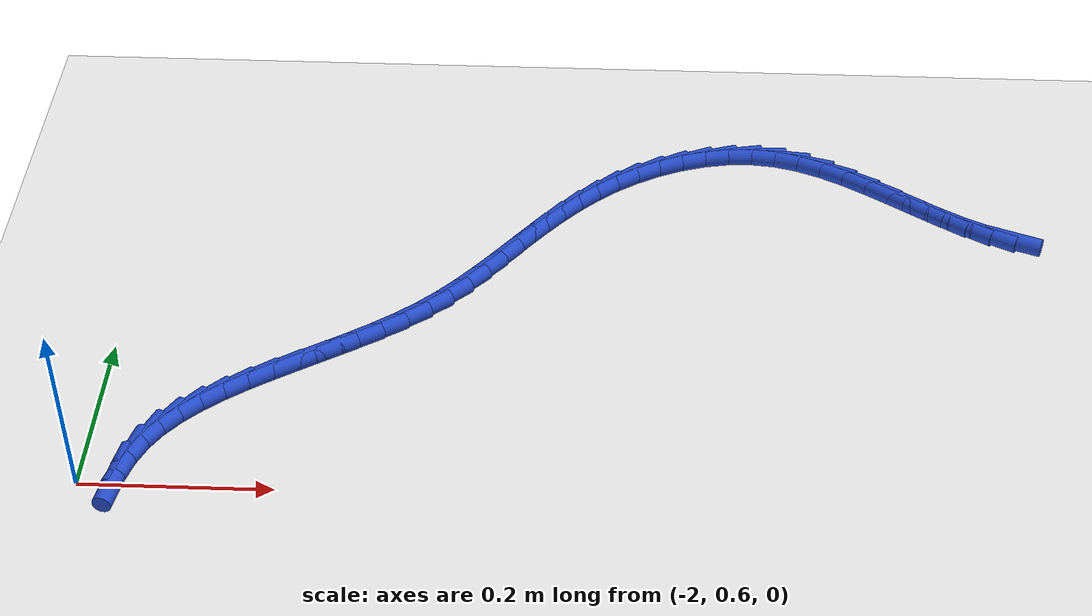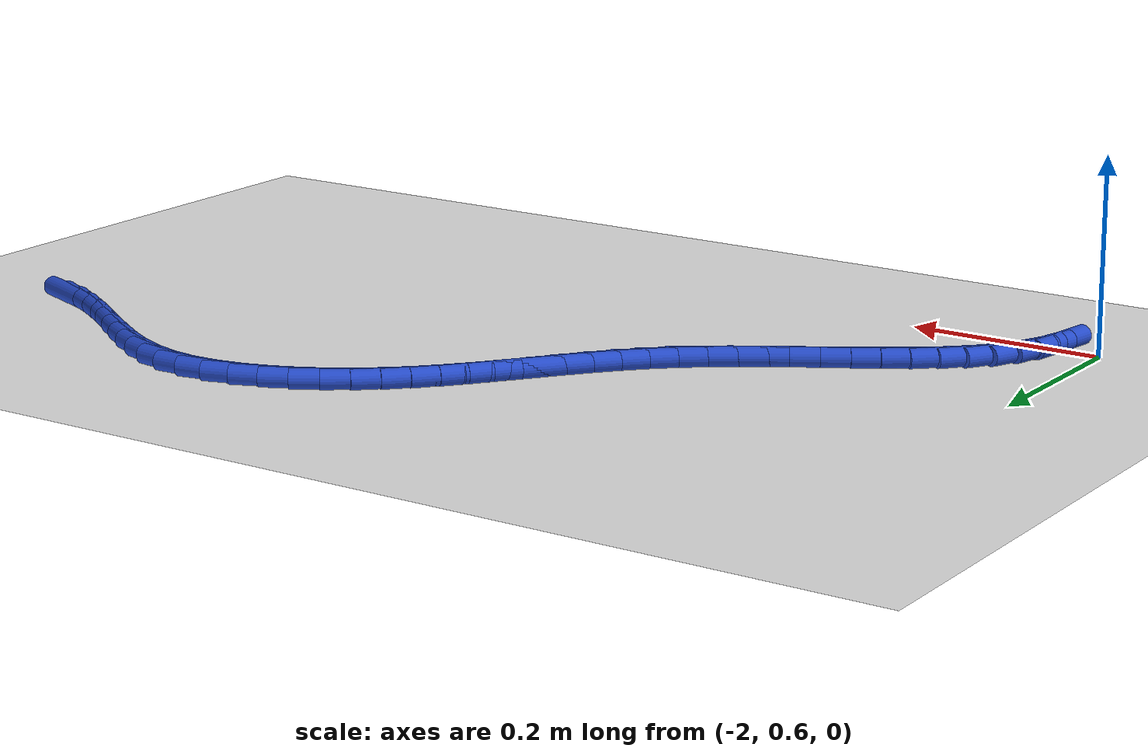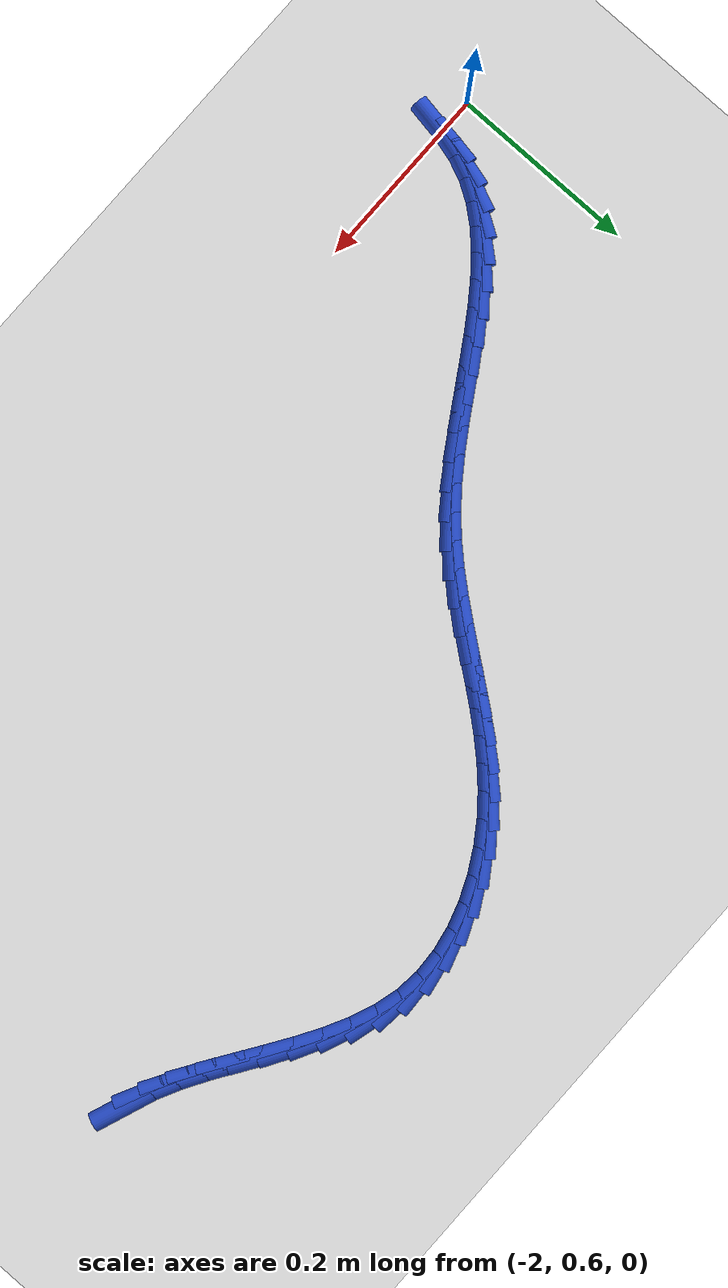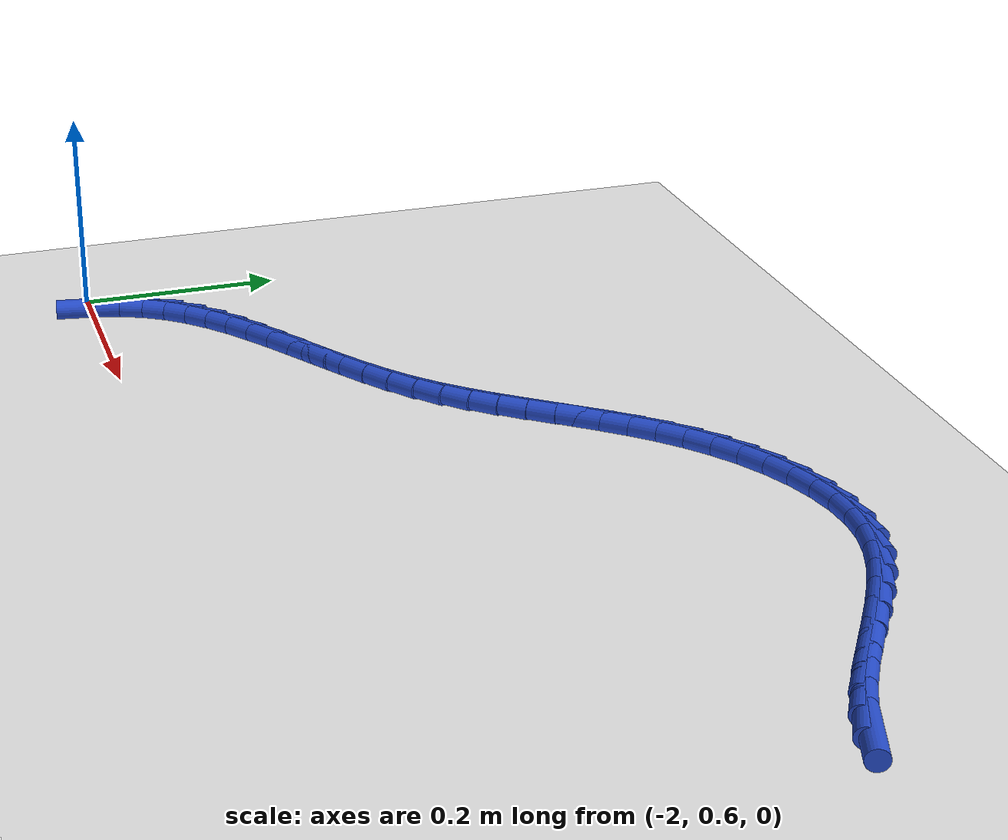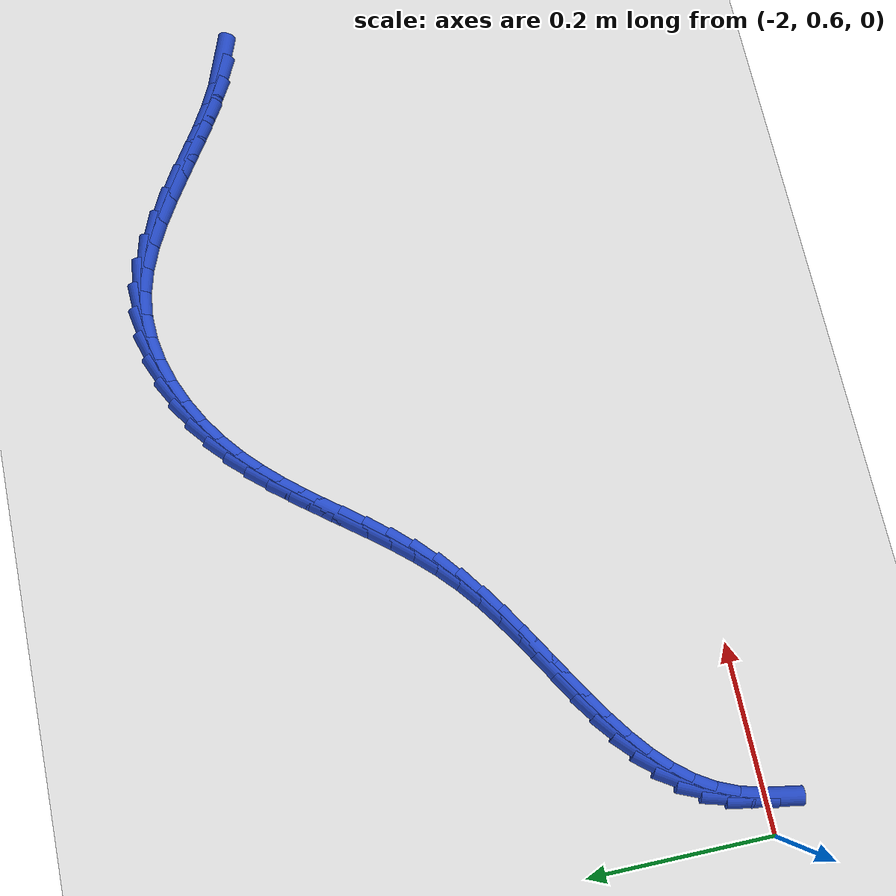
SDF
<sdf version="1.6">
 <world name="default">
  <model name="ground_plane">
   <static>1</static>
   <link name="link">
    <collision name="collision">
     <geometry><plane><normal>0 0 1</normal><size>100 100</size></plane></geometry>
     <surface><friction><ode><mu>100</mu><mu2>50</mu2></ode></friction></surface>
    </collision>
    <visual name="visual">
     <cast_shadows>0</cast_shadows>
     <geometry><plane><normal>0 0 1</normal><size>100 100</size></plane></geometry>
     <material>
      <script><uri>file://media/materials/scripts/gazebo.material</uri><name>Gazebo/WhiteGlow</name></script>
     </material>
    </visual>
   </link>
  </model>
  <model name="line">
   <link name="link_61">
    <pose>-1.0348695097243301 1.0064445026493538 0.01 0 1.57 -0.3600196760487793</pose>
    <collision name="collision">
     <geometry><cylinder><radius>0.01</radius><length>0.08</length></cylinder></geometry>
    </collision>
    <visual name="visual">
     <material>
      <script><name>Gazebo/Blue</name><uri>file://media/materials/scripts/gazebo.material</uri></script>
     </material>
     <geometry><cylinder><radius>0.01</radius><length>0.08</length></cylinder></geometry>
    </visual>
   </link>
   <link name="link_62">
    <pose>-1.0595836702912398 1.0157475383391132 0.01 0 1.57 -0.46654118120550203</pose>
    <collision name="collision">
     <geometry><cylinder><radius>0.01</radius><length>0.08</length></cylinder></geometry>
    </collision>
    <visual name="visual">
     <material>
      <script><name>Gazebo/Blue</name><uri>file://media/materials/scripts/gazebo.material</uri></script>
     </material>
     <geometry><cylinder><radius>0.01</radius><length>0.08</length></cylinder></geometry>
    </visual>
   </link>
   <link name="link_63">
    <pose>-1.084318189761183 1.0282043918446997 0.01 0 1.57 -0.5366930967888984</pose>
    <collision name="collision">
     <geometry><cylinder><radius>0.01</radius><length>0.08</length></cylinder></geometry>
    </collision>
    <visual name="visual">
     <material>
      <script><name>Gazebo/Blue</name><uri>file://media/materials/scripts/gazebo.material</uri></script>
     </material>
     <geometry><cylinder><radius>0.01</radius><length>0.08</length></cylinder></geometry>
    </visual>
   </link>
   <link name="link_64">
    <pose>-1.1091350107379692 1.0429689950405736 0.01 0 1.57 -0.5764200681480977</pose>
    <collision name="collision">
     <geometry><cylinder><radius>0.01</radius><length>0.08</length></cylinder></geometry>
    </collision>
    <visual name="visual">
     <material>
      <script><name>Gazebo/Blue</name><uri>file://media/materials/scripts/gazebo.material</uri></script>
     </material>
     <geometry><cylinder><radius>0.01</radius><length>0.08</length></cylinder></geometry>
    </visual>
   </link>
   <link name="link_65">
    <pose>-1.1340960758254066 1.0591952798011952 0.01 0 1.57 -0.5897536667342413</pose>
    <collision name="collision">
     <geometry><cylinder><radius>0.01</radius><length>0.08</length></cylinder></geometry>
    </collision>
    <visual name="visual">
     <material>
      <script><name>Gazebo/Blue</name><uri>file://media/materials/scripts/gazebo.material</uri></script>
     </material>
     <geometry><cylinder><radius>0.01</radius><length>0.08</length></cylinder></geometry>
    </visual>
   </link>
   <link name="link_66">
    <pose>-1.1592633276273043 1.0760371780010252 0.01 0 1.57 -0.5785402649932369</pose>
    <collision name="collision">
     <geometry><cylinder><radius>0.01</radius><length>0.08</length></cylinder></geometry>
    </collision>
    <visual name="visual">
     <material>
      <script><name>Gazebo/Blue</name><uri>file://media/materials/scripts/gazebo.material</uri></script>
     </material>
     <geometry><cylinder><radius>0.01</radius><length>0.08</length></cylinder></geometry>
    </visual>
   </link>
   <link name="link_67">
    <pose>-1.1846987087474719 1.0926486215145246 0.01 0 1.57 -0.54257557063632</pose>
    <collision name="collision">
     <geometry><cylinder><radius>0.01</radius><length>0.08</length></cylinder></geometry>
    </collision>
    <visual name="visual">
     <material>
      <script><name>Gazebo/Blue</name><uri>file://media/materials/scripts/gazebo.material</uri></script>
     </material>
     <geometry><cylinder><radius>0.01</radius><length>0.08</length></cylinder></geometry>
    </visual>
   </link>
   <link name="link_68">
    <pose>-1.210464161789718 1.1081835422161532 0.01 0 1.57 -0.47983360979448114</pose>
    <collision name="collision">
     <geometry><cylinder><radius>0.01</radius><length>0.08</length></cylinder></geometry>
    </collision>
    <visual name="visual">
     <material>
      <script><name>Gazebo/Blue</name><uri>file://media/materials/scripts/gazebo.material</uri></script>
     </material>
     <geometry><cylinder><radius>0.01</radius><length>0.08</length></cylinder></geometry>
    </visual>
   </link>
   <link name="link_69">
    <pose>-1.236621629357852 1.1217958719803722 0.01 0 1.57 -0.38693950141402556</pose>
    <collision name="collision">
     <geometry><cylinder><radius>0.01</radius><length>0.08</length></cylinder></geometry>
    </collision>
    <visual name="visual">
     <material>
      <script><name>Gazebo/Blue</name><uri>file://media/materials/scripts/gazebo.material</uri></script>
     </material>
     <geometry><cylinder><radius>0.01</radius><length>0.08</length></cylinder></geometry>
    </visual>
   </link>
   <link name="link_70">
    <pose>-1.2632330540556822 1.132639542681642 0.01 0 1.57 -0.2604299718025255</pose>
    <collision name="collision">
     <geometry><cylinder><radius>0.01</radius><length>0.08</length></cylinder></geometry>
    </collision>
    <visual name="visual">
     <material>
      <script><name>Gazebo/Blue</name><uri>file://media/materials/scripts/gazebo.material</uri></script>
     </material>
     <geometry><cylinder><radius>0.01</radius><length>0.08</length></cylinder></geometry>
    </visual>
   </link>
   <link name="link_71">
    <pose>-1.2903603784870183 1.1398684861944228 0.01 0 1.57 -0.1039151474428411</pose>
    <collision name="collision">
     <geometry><cylinder><radius>0.01</radius><length>0.08</length></cylinder></geometry>
    </collision>
    <visual name="visual">
     <material>
      <script><name>Gazebo/Blue</name><uri>file://media/materials/scripts/gazebo.material</uri></script>
     </material>
     <geometry><cylinder><radius>0.01</radius><length>0.08</length></cylinder></geometry>
    </visual>
   </link>
   <link name="link_72">
    <pose>-1.3180251527663653 1.142753667851129 0.01 0 1.57 0.04909680339785257</pose>
    <collision name="collision">
     <geometry><cylinder><radius>0.01</radius><length>0.08</length></cylinder></geometry>
    </collision>
    <visual name="visual">
     <material>
      <script><name>Gazebo/Blue</name><uri>file://media/materials/scripts/gazebo.material</uri></script>
     </material>
     <geometry><cylinder><radius>0.01</radius><length>0.08</length></cylinder></geometry>
    </visual>
   </link>
   <link name="link_73">
    <pose>-1.3459677727446917 1.1413806711532437 0.01 0 1.57 0.18462029657132842</pose>
    <collision name="collision">
     <geometry><cylinder><radius>0.01</radius><length>0.08</length></cylinder></geometry>
    </collision>
    <visual name="visual">
     <material>
      <script><name>Gazebo/Blue</name><uri>file://media/materials/scripts/gazebo.material</uri></script>
     </material>
     <geometry><cylinder><radius>0.01</radius><length>0.08</length></cylinder></geometry>
    </visual>
   </link>
   <link name="link_74">
    <pose>-1.373809110504782 1.1361813885359002 0.01 0 1.57 0.3042912069913193</pose>
    <collision name="collision">
     <geometry><cylinder><radius>0.01</radius><length>0.08</length></cylinder></geometry>
    </collision>
    <visual name="visual">
     <material>
      <script><name>Gazebo/Blue</name><uri>file://media/materials/scripts/gazebo.material</uri></script>
     </material>
     <geometry><cylinder><radius>0.01</radius><length>0.08</length></cylinder></geometry>
    </visual>
   </link>
   <link name="link_75">
    <pose>-1.4011696002491214 1.1275889811514253 0.01 0 1.57 0.4110980284607119</pose>
    <collision name="collision">
     <geometry><cylinder><radius>0.01</radius><length>0.08</length></cylinder></geometry>
    </collision>
    <visual name="visual">
     <material>
      <script><name>Gazebo/Blue</name><uri>file://media/materials/scripts/gazebo.material</uri></script>
     </material>
     <geometry><cylinder><radius>0.01</radius><length>0.08</length></cylinder></geometry>
    </visual>
   </link>
   <link name="link_76">
    <pose>-1.4276696761801946 1.1160366101521455 0.01 0 1.57 0.5084825435246133</pose>
    <collision name="collision">
     <geometry><cylinder><radius>0.01</radius><length>0.08</length></cylinder></geometry>
    </collision>
    <visual name="visual">
     <material>
      <script><name>Gazebo/Blue</name><uri>file://media/materials/scripts/gazebo.material</uri></script>
     </material>
     <geometry><cylinder><radius>0.01</radius><length>0.08</length></cylinder></geometry>
    </visual>
   </link>
   <link name="link_77">
    <pose>-1.4529297725004873 1.1019574366903875 0.01 0 1.57 0.5999839712732107</pose>
    <collision name="collision">
     <geometry><cylinder><radius>0.01</radius><length>0.08</length></cylinder></geometry>
    </collision>
    <visual name="visual">
     <material>
      <script><name>Gazebo/Blue</name><uri>file://media/materials/scripts/gazebo.material</uri></script>
     </material>
     <geometry><cylinder><radius>0.01</radius><length>0.08</length></cylinder></geometry>
    </visual>
   </link>
   <link name="link_78">
    <pose>-1.4765703234124838 1.085784621918478 0.01 0 1.57 0.687642220592534</pose>
    <collision name="collision">
     <geometry><cylinder><radius>0.01</radius><length>0.08</length></cylinder></geometry>
    </collision>
    <visual name="visual">
     <material>
      <script><name>Gazebo/Blue</name><uri>file://media/materials/scripts/gazebo.material</uri></script>
     </material>
     <geometry><cylinder><radius>0.01</radius><length>0.08</length></cylinder></geometry>
    </visual>
   </link>
   <link name="link_79">
    <pose>-1.4983072098923145 1.0679303792836627 0.01 0 1.57 0.7649116421586327</pose>
    <collision name="collision">
     <geometry><cylinder><radius>0.01</radius><length>0.08</length></cylinder></geometry>
    </collision>
    <visual name="visual">
     <material>
      <script><name>Gazebo/Blue</name><uri>file://media/materials/scripts/gazebo.material</uri></script>
     </material>
     <geometry><cylinder><radius>0.01</radius><length>0.08</length></cylinder></geometry>
    </visual>
   </link>
   <link name="link_80">
    <pose>-1.5183416998805865 1.0487003943476085 0.01 0 1.57 0.8275694675574401</pose>
    <collision name="collision">
     <geometry><cylinder><radius>0.01</radius><length>0.08</length></cylinder></geometry>
    </collision>
    <visual name="visual">
     <material>
      <script><name>Gazebo/Blue</name><uri>file://media/materials/scripts/gazebo.material</uri></script>
     </material>
     <geometry><cylinder><radius>0.01</radius><length>0.08</length></cylinder></geometry>
    </visual>
   </link>
   <link name="link_81">
    <pose>-1.5370289741319392 1.0283665734239935 0.01 0 1.57 0.8744662514059732</pose>
    <collision name="collision">
     <geometry><cylinder><radius>0.01</radius><length>0.08</length></cylinder></geometry>
    </collision>
    <visual name="visual">
     <material>
      <script><name>Gazebo/Blue</name><uri>file://media/materials/scripts/gazebo.material</uri></script>
     </material>
     <geometry><cylinder><radius>0.01</radius><length>0.08</length></cylinder></geometry>
    </visual>
   </link>
   <link name="link_82">
    <pose>-1.5547242754843926 1.0072008092010576 0.01 0 1.57 0.9051604834549464</pose>
    <collision name="collision">
     <geometry><cylinder><radius>0.01</radius><length>0.08</length></cylinder></geometry>
    </collision>
    <visual name="visual">
     <material>
      <script><name>Gazebo/Blue</name><uri>file://media/materials/scripts/gazebo.material</uri></script>
     </material>
     <geometry><cylinder><radius>0.01</radius><length>0.08</length></cylinder></geometry>
    </visual>
   </link>
   <link name="link_83">
    <pose>-1.5717828467759662 0.985474994367039 0.01 0 1.57 0.9195893222731479</pose>
    <collision name="collision">
     <geometry><cylinder><radius>0.01</radius><length>0.08</length></cylinder></geometry>
    </collision>
    <visual name="visual">
     <material>
      <script><name>Gazebo/Blue</name><uri>file://media/materials/scripts/gazebo.material</uri></script>
     </material>
     <geometry><cylinder><radius>0.01</radius><length>0.08</length></cylinder></geometry>
    </visual>
   </link>
   <link name="link_84">
    <pose>-1.5885599308446785 0.9634610216101771 0.01 0 1.57 0.917829776996404</pose>
    <collision name="collision">
     <geometry><cylinder><radius>0.01</radius><length>0.08</length></cylinder></geometry>
    </collision>
    <visual name="visual">
     <material>
      <script><name>Gazebo/Blue</name><uri>file://media/materials/scripts/gazebo.material</uri></script>
     </material>
     <geometry><cylinder><radius>0.01</radius><length>0.08</length></cylinder></geometry>
    </visual>
   </link>
   <link name="link_85">
    <pose>-1.60541077052855 0.9414307836187106 0.01 0 1.57 0.8999839110041665</pose>
    <collision name="collision">
     <geometry><cylinder><radius>0.01</radius><length>0.08</length></cylinder></geometry>
    </collision>
    <visual name="visual">
     <material>
      <script><name>Gazebo/Blue</name><uri>file://media/materials/scripts/gazebo.material</uri></script>
     </material>
     <geometry><cylinder><radius>0.01</radius><length>0.08</length></cylinder></geometry>
    </visual>
   </link>
   <link name="link_86">
    <pose>-1.6226906086656 0.9196561730808787 0.01 0 1.57 0.8661915407173961</pose>
    <collision name="collision">
     <geometry><cylinder><radius>0.01</radius><length>0.08</length></cylinder></geometry>
    </collision>
    <visual name="visual">
     <material>
      <script><name>Gazebo/Blue</name><uri>file://media/materials/scripts/gazebo.material</uri></script>
     </material>
     <geometry><cylinder><radius>0.01</radius><length>0.08</length></cylinder></geometry>
    </visual>
   </link>
   <link name="link_87">
    <pose>-1.6407546880938475 0.89840908268492 0.01 0 1.57 0.8167642933289972</pose>
    <collision name="collision">
     <geometry><cylinder><radius>0.01</radius><length>0.08</length></cylinder></geometry>
    </collision>
    <visual name="visual">
     <material>
      <script><name>Gazebo/Blue</name><uri>file://media/materials/scripts/gazebo.material</uri></script>
     </material>
     <geometry><cylinder><radius>0.01</radius><length>0.08</length></cylinder></geometry>
    </visual>
   </link>
   <link name="link_88">
    <pose>-1.6599582516513118 0.8779614051190738 0.01 0 1.57 0.752424784504581</pose>
    <collision name="collision">
     <geometry><cylinder><radius>0.01</radius><length>0.08</length></cylinder></geometry>
    </collision>
    <visual name="visual">
     <material>
      <script><name>Gazebo/Blue</name><uri>file://media/materials/scripts/gazebo.material</uri></script>
     </material>
     <geometry><cylinder><radius>0.01</radius><length>0.08</length></cylinder></geometry>
    </visual>
   </link>
   <link name="link_89">
    <pose>-1.6806565167701106 0.8585850158647248 0.01 0 1.57 0.6808663428796471</pose>
    <collision name="collision">
     <geometry><cylinder><radius>0.01</radius><length>0.08</length></cylinder></geometry>
    </collision>
    <visual name="visual">
     <material>
      <script><name>Gazebo/Blue</name><uri>file://media/materials/scripts/gazebo.material</uri></script>
     </material>
     <geometry><cylinder><radius>0.01</radius><length>0.08</length></cylinder></geometry>
    </visual>
   </link>
   <link name="link_90">
    <pose>-1.7030480814947517 0.8404457155670403 0.01 0 1.57 0.6237194241804441</pose>
    <collision name="collision">
     <geometry><cylinder><radius>0.01</radius><length>0.08</length></cylinder></geometry>
    </collision>
    <visual name="visual">
     <material>
      <script><name>Gazebo/Blue</name><uri>file://media/materials/scripts/gazebo.material</uri></script>
     </material>
     <geometry><cylinder><radius>0.01</radius><length>0.08</length></cylinder></geometry>
    </visual>
   </link>
   <link name="link_91">
    <pose>-1.7268042813016864 0.8233522016325399 0.01 0 1.57 0.5840618224408133</pose>
    <collision name="collision">
     <geometry><cylinder><radius>0.01</radius><length>0.08</length></cylinder></geometry>
    </collision>
    <visual name="visual">
     <material>
      <script><name>Gazebo/Blue</name><uri>file://media/materials/scripts/gazebo.material</uri></script>
     </material>
     <geometry><cylinder><radius>0.01</radius><length>0.08</length></cylinder></geometry>
    </visual>
   </link>
   <link name="link_92">
    <pose>-1.7514856146757365 0.8070381040325216 0.01 0 1.57 0.5606453323897965</pose>
    <collision name="collision">
     <geometry><cylinder><radius>0.01</radius><length>0.08</length></cylinder></geometry>
    </collision>
    <visual name="visual">
     <material>
      <script><name>Gazebo/Blue</name><uri>file://media/materials/scripts/gazebo.material</uri></script>
     </material>
     <geometry><cylinder><radius>0.01</radius><length>0.08</length></cylinder></geometry>
    </visual>
   </link>
   <link name="link_93">
    <pose>-1.7766525801017259 0.7912370527382825 0.01 0 1.57 0.5527653352220513</pose>
    <collision name="collision">
     <geometry><cylinder><radius>0.01</radius><length>0.08</length></cylinder></geometry>
    </collision>
    <visual name="visual">
     <material>
      <script><name>Gazebo/Blue</name><uri>file://media/materials/scripts/gazebo.material</uri></script>
     </material>
     <geometry><cylinder><radius>0.01</radius><length>0.08</length></cylinder></geometry>
    </visual>
   </link>
   <link name="link_94">
    <pose>-1.8018656760644765 0.775682677721121 0.01 0 1.57 0.5603861258192583</pose>
    <collision name="collision">
     <geometry><cylinder><radius>0.01</radius><length>0.08</length></cylinder></geometry>
    </collision>
    <visual name="visual">
     <material>
      <script><name>Gazebo/Blue</name><uri>file://media/materials/scripts/gazebo.material</uri></script>
     </material>
     <geometry><cylinder><radius>0.01</radius><length>0.08</length></cylinder></geometry>
    </visual>
   </link>
   <link name="link_95">
    <pose>-1.8266854010488112 0.7601086089523338 0.01 0 1.57 0.5842091783237665</pose>
    <collision name="collision">
     <geometry><cylinder><radius>0.01</radius><length>0.08</length></cylinder></geometry>
    </collision>
    <visual name="visual">
     <material>
      <script><name>Gazebo/Blue</name><uri>file://media/materials/scripts/gazebo.material</uri></script>
     </material>
     <geometry><cylinder><radius>0.01</radius><length>0.08</length></cylinder></geometry>
    </visual>
   </link>
   <link name="link_96">
    <pose>-1.8506722535395523 0.7442484764032193 0.01 0 1.57 0.6257067838302894</pose>
    <collision name="collision">
     <geometry><cylinder><radius>0.01</radius><length>0.08</length></cylinder></geometry>
    </collision>
    <visual name="visual">
     <material>
      <script><name>Gazebo/Blue</name><uri>file://media/materials/scripts/gazebo.material</uri></script>
     </material>
     <geometry><cylinder><radius>0.01</radius><length>0.08</length></cylinder></geometry>
    </visual>
   </link>
   <link name="link_97">
    <pose>-1.8733867320215223 0.7278359100450746 0.01 0 1.57 0.6870805349985699</pose>
    <collision name="collision">
     <geometry><cylinder><radius>0.01</radius><length>0.08</length></cylinder></geometry>
    </collision>
    <visual name="visual">
     <material>
      <script><name>Gazebo/Blue</name><uri>file://media/materials/scripts/gazebo.material</uri></script>
     </material>
     <geometry><cylinder><radius>0.01</radius><length>0.08</length></cylinder></geometry>
    </visual>
   </link>
   <link name="link_98">
    <pose>-1.8943893349795446 0.7106045398491976 0.01 0 1.57 0.7710135237503196</pose>
    <collision name="collision">
     <geometry><cylinder><radius>0.01</radius><length>0.08</length></cylinder></geometry>
    </collision>
    <visual name="visual">
     <material>
      <script><name>Gazebo/Blue</name><uri>file://media/materials/scripts/gazebo.material</uri></script>
     </material>
     <geometry><cylinder><radius>0.01</radius><length>0.08</length></cylinder></geometry>
    </visual>
   </link>
   <link name="link_99">
    <pose>-1.9132405608984406 0.6922879957868855 0.01 0 1.57 0.879963276676344</pose>
    <collision name="collision">
     <geometry><cylinder><radius>0.01</radius><length>0.08</length></cylinder></geometry>
    </collision>
    <visual name="visual">
     <material>
      <script><name>Gazebo/Blue</name><uri>file://media/materials/scripts/gazebo.material</uri></script>
     </material>
     <geometry><cylinder><radius>0.01</radius><length>0.08</length></cylinder></geometry>
    </visual>
   </link>
   <link name="link_100">
    <pose>-1.9295009082630343 0.6726199078294365 0.01 0 1.57 1.0146935229677074</pose>
    <collision name="collision">
     <geometry><cylinder><radius>0.01</radius><length>0.08</length></cylinder></geometry>
    </collision>
    <visual name="visual">
     <material>
      <script><name>Gazebo/Blue</name><uri>file://media/materials/scripts/gazebo.material</uri></script>
     </material>
     <geometry><cylinder><radius>0.01</radius><length>0.08</length></cylinder></geometry>
    </visual>
   </link>
   <link name="link_101">
    <pose>-1.942730875558147 0.6513339059481477 0.01 0 1.57 1.1680452014995708</pose>
    <collision name="collision">
     <geometry><cylinder><radius>0.01</radius><length>0.08</length></cylinder></geometry>
    </collision>
    <visual name="visual">
     <material>
      <script><name>Gazebo/Blue</name><uri>file://media/materials/scripts/gazebo.material</uri></script>
     </material>
     <geometry><cylinder><radius>0.01</radius><length>0.08</length></cylinder></geometry>
    </visual>
   </link>
   <link name="link_102">
    <pose>-1.9525826728585018 0.6282097872499396 0.01 0 1.57 1.3028477267544547</pose>
    <collision name="collision">
     <geometry><cylinder><radius>0.01</radius><length>0.08</length></cylinder></geometry>
    </collision>
    <visual name="visual">
     <material>
      <script><name>Gazebo/Blue</name><uri>file://media/materials/scripts/gazebo.material</uri></script>
     </material>
     <geometry><cylinder><radius>0.01</radius><length>0.08</length></cylinder></geometry>
    </visual>
   </link>
   <link name="link_103">
    <pose>-1.9594008468596498 0.6033758674826732 0.01 0 1.57 1.403086827614705</pose>
    <collision name="collision">
     <geometry><cylinder><radius>0.01</radius><length>0.08</length></cylinder></geometry>
    </collision>
    <visual name="visual">
     <material>
      <script><name>Gazebo/Blue</name><uri>file://media/materials/scripts/gazebo.material</uri></script>
     </material>
     <geometry><cylinder><radius>0.01</radius><length>0.08</length></cylinder></geometry>
    </visual>
   </link>
  </model>
 </world>
</sdf>
